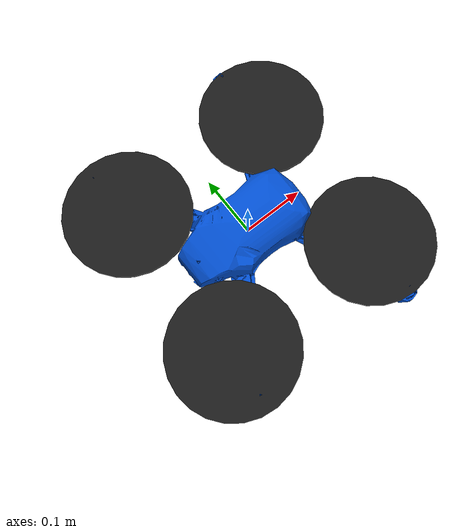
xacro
<?xml version="1.0"?>
<robot xmlns:xacro="http://www.ros.org/wiki/xacro">

    <xacro:include filename="inertial_macros.xacro"/>

    <!-- Iris Quadcopter Properties -->
    <xacro:property name="body_mass" value="1.5"/>
    <xacro:property name="body_radius" value="0.1"/>
    <xacro:property name="arm_length" value="0.13"/>
    <xacro:property name="rotor_offset_top" value="0.023"/>

    <!-- Colors -->
    <material name="blue">
        <color rgba="0.0 0.3 0.8 1.0"/>
    </material>

    <material name="black">
        <color rgba="0.1 0.1 0.1 1.0"/>
    </material>

    <material name="white">
        <color rgba="1.0 1.0 1.0 1.0"/>
    </material>

    <!-- Base Link (Main Body) -->
    <link name="base_link">
        <visual>
            <origin xyz="0 0 0" rpy="0 0 0"/>
            <geometry>
                <mesh filename="package://iris_description/meshes/iris.stl" scale="1 1 1"/>
            </geometry>
            <material name="blue"/>
        </visual>

        <collision>
            <origin xyz="0 0 0" rpy="0 0 0"/>
            <geometry>
                <mesh filename="package://iris_description/meshes/iris.stl" scale="1 1 1"/>
            </geometry>
        </collision>

        <!-- Inertial properties for quadcopter body -->
        <xacro:inertial_custom mass="${body_mass}"
                               ixx="0.029125" ixy="0.0" ixz="0.0"
                               iyy="0.029125" iyz="0.0" izz="0.055225">
            <origin xyz="0 0 0" rpy="0 0 0"/>
        </xacro:inertial_custom>
    </link>

    <!-- Gazebo reference for base_link -->
    <gazebo reference="base_link">
        <material>Gazebo/DarkGrey</material>
        <gravity>true</gravity>
    </gazebo>

    <!-- Rotor 0 (Front Right) -->
    <xacro:macro name="rotor" params="rotor_number x_pos y_pos">
        <link name="rotor_${rotor_number}">
            <visual>
                <origin xyz="0 0 0" rpy="0 0 0"/>
                <geometry>
                    <cylinder length="0.005" radius="0.1"/>
                </geometry>
                <material name="black"/>
            </visual>

            <collision>
                <origin xyz="0 0 0" rpy="0 0 0"/>
                <geometry>
                    <cylinder length="0.005" radius="0.1"/>
                </geometry>
            </collision>

            <xacro:inertial_cylinder mass="0.005" length="0.005" radius="0.1">
                <origin xyz="0 0 0" rpy="0 0 0"/>
            </xacro:inertial_cylinder>
        </link>

        <joint name="rotor_${rotor_number}_joint" type="continuous">
            <parent link="base_link"/>
            <child link="rotor_${rotor_number}"/>
            <origin xyz="${x_pos} ${y_pos} ${rotor_offset_top}" rpy="0 0 0"/>
            <axis xyz="0 0 1"/>
            <limit effort="1000.0" velocity="1000.0"/>
        </joint>

        <gazebo reference="rotor_${rotor_number}">
            <material>Gazebo/Black</material>
        </gazebo>
    </xacro:macro>

    <!-- Instantiate all 4 rotors -->
    <xacro:rotor rotor_number="0" x_pos="${arm_length}" y_pos="${arm_length}"/>
    <xacro:rotor rotor_number="1" x_pos="-${arm_length}" y_pos="${arm_length}"/>
    <xacro:rotor rotor_number="2" x_pos="${arm_length}" y_pos="-${arm_length}"/>
    <xacro:rotor rotor_number="3" x_pos="-${arm_length}" y_pos="-${arm_length}"/>

</robot>

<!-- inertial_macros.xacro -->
<robot xmlns:xacro="http://www.ros.org/wiki/xacro">

    <!-- Macro for box inertia -->
    <xacro:macro name="inertial_box" params="mass x y z *origin">
        <inertial>
            <xacro:insert_block name="origin"/>
            <mass value="${mass}"/>
            <inertia ixx="${(1/12) * mass * (y*y+z*z)}" ixy="0.0" ixz="0.0"
                     iyy="${(1/12) * mass * (x*x+z*z)}" iyz="0.0"
                     izz="${(1/12) * mass * (x*x+y*y)}"/>
        </inertial>
    </xacro:macro>

    <!-- Macro for cylinder inertia -->
    <xacro:macro name="inertial_cylinder" params="mass length radius *origin">
        <inertial>
            <xacro:insert_block name="origin"/>
            <mass value="${mass}"/>
            <inertia ixx="${(1/12) * mass * (3*radius*radius + length*length)}" ixy="0.0" ixz="0.0"
                     iyy="${(1/12) * mass * (3*radius*radius + length*length)}" iyz="0.0"
                     izz="${(1/2) * mass * (radius*radius)}"/>
        </inertial>
    </xacro:macro>

    <!-- Macro for sphere inertia -->
    <xacro:macro name="inertial_sphere" params="mass radius *origin">
        <inertial>
            <xacro:insert_block name="origin"/>
            <mass value="${mass}"/>
            <inertia ixx="${(2/5) * mass * (radius*radius)}" ixy="0.0" ixz="0.0"
                     iyy="${(2/5) * mass * (radius*radius)}" iyz="0.0"
                     izz="${(2/5) * mass * (radius*radius)}"/>
        </inertial>
    </xacro:macro>

    <!-- Macro for custom inertia (for complex meshes like drone body) -->
    <xacro:macro name="inertial_custom" params="mass ixx ixy ixz iyy iyz izz *origin">
        <inertial>
            <xacro:insert_block name="origin"/>
            <mass value="${mass}"/>
            <inertia ixx="${ixx}" ixy="${ixy}" ixz="${ixz}"
                     iyy="${iyy}" iyz="${iyz}" izz="${izz}"/>
        </inertial>
    </xacro:macro>

</robot>
